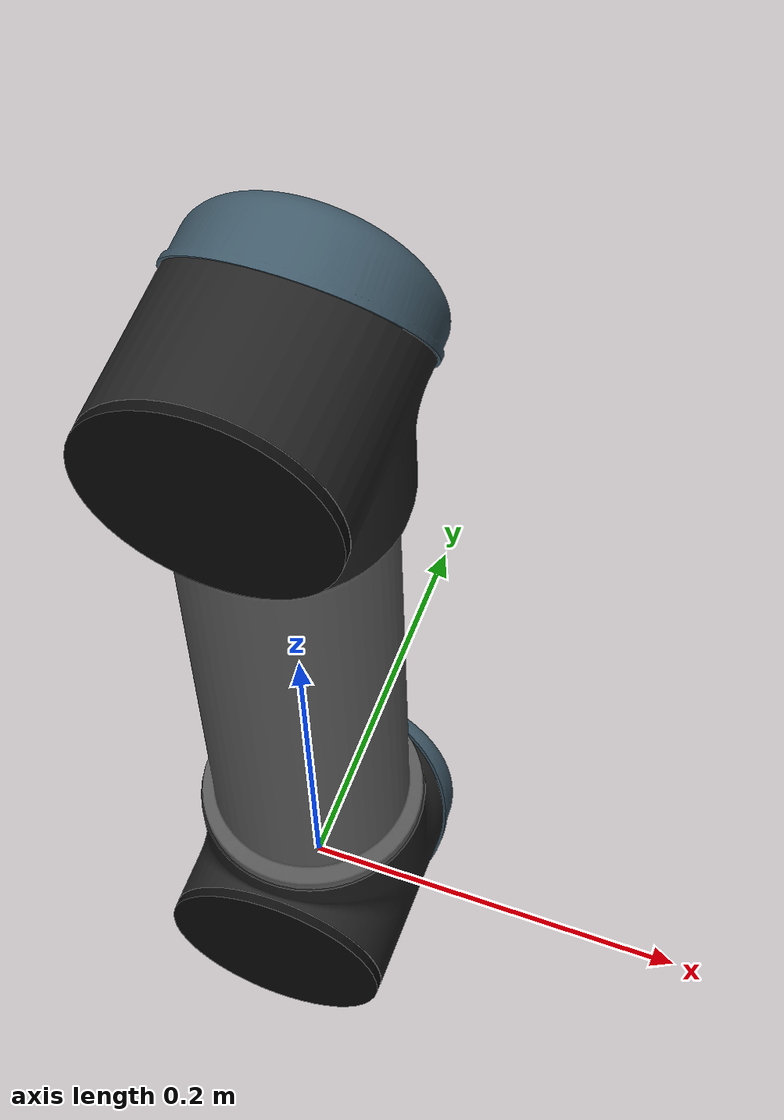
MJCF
<mujoco model="upperarm">
  <default>
    <default class="visual">
      <geom group="2" type="mesh" contype="0" conaffinity="0"/>
    </default>
    <default class="collision">
      <geom group="3" type="mesh"/>
    </default>
  </default>
  <asset>
    <material name="material_upperarm_0" specular="0.20000000000000004" shininess="1.0" rgba="0.14117647 0.14117647 0.14117647 1.0"/>
    <material name="material_upperarm_1" specular="0.20000000000000004" shininess="1.0" rgba="0.05098039 0.05098039 0.05098039 1.0"/>
    <material name="material_upperarm_2" specular="0.20000000000000004" shininess="1.0" rgba="0.25098039 0.34901961 0.40784314 1.0"/>
    <material name="material_upperarm_3" specular="0.20000000000000004" shininess="1.0" rgba="0.41960784 0.41960784 0.41960784 1.0"/>
    <mesh file="upperarm_0.obj"/>
    <mesh file="upperarm_1.obj"/>
    <mesh file="upperarm_2.obj"/>
    <mesh file="upperarm_3.obj"/>
  </asset>
  <worldbody>
    <body name="upperarm">
      <geom mesh="upperarm_0" material="material_upperarm_3" class="visual"/>
      <geom mesh="upperarm_1" material="material_upperarm_2" class="visual"/>
      <geom mesh="upperarm_2" material="material_upperarm_1" class="visual"/>
      <geom mesh="upperarm_3" material="material_upperarm_0" class="visual"/>
      <geom mesh="upperarm_0" class="collision"/>
      <geom mesh="upperarm_1" class="collision"/>
      <geom mesh="upperarm_2" class="collision"/>
      <geom mesh="upperarm_3" class="collision"/>
    </body>
  </worldbody>
</mujoco>
